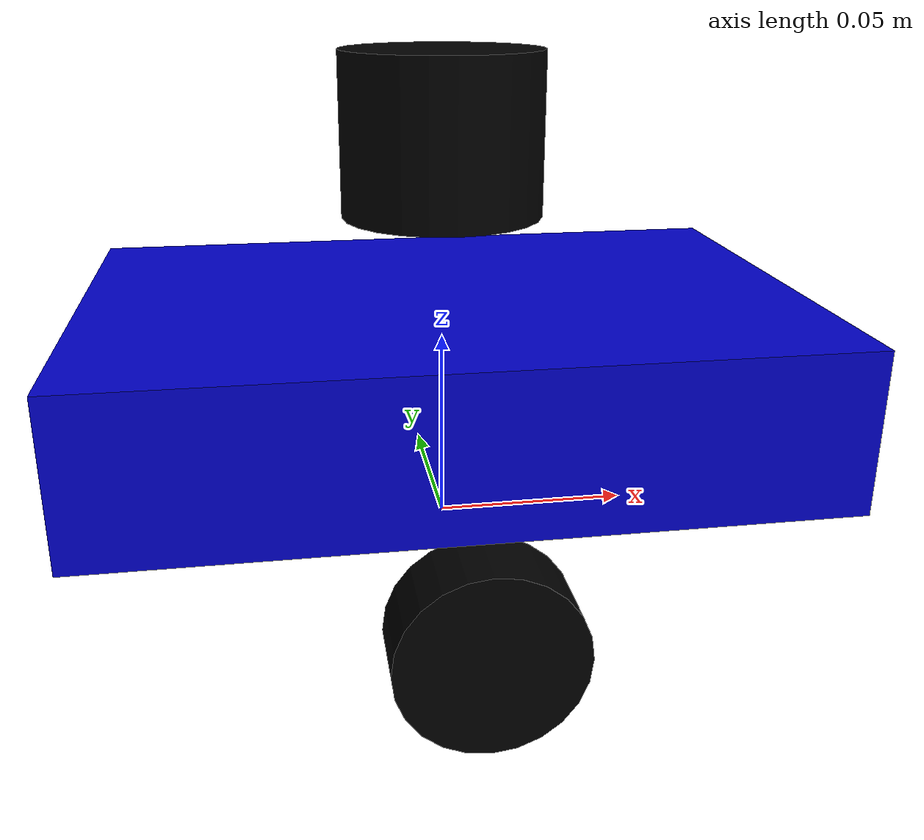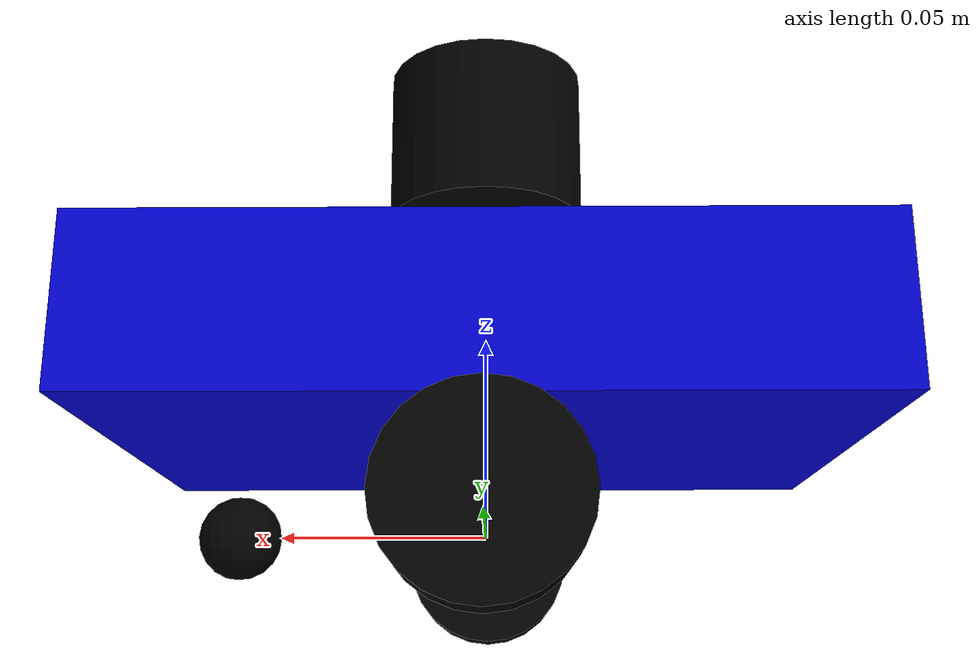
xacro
<?xml version="1.0"?>
<robot name="testbot" xmlns:xacro="http://www.ros.org/wiki/xacro">

  <xacro:include filename="$(find testbot_description)/urdf/physical_properties.xacro"/>

  <material name="black">
    <color rgba="0.0 0.0 0.0 1.0"/>
  </material>

  <material name="blue">
    <color rgba="0.0 0.0 0.8 1.0"/>
  </material>

  <link name="base_footprint"/>

  <joint name="base_joint" type="fixed">
    <parent link="base_footprint"/>
    <child link="base_link"/>
    <origin xyz="0 0 ${wheel_radius}" rpy="0 0 0"/>
  </joint>

  <link name="base_link">
    <visual>
      <geometry>
        <box size="${robot_length} ${robot_width} 0.04"/>
      </geometry>
      <material name="blue"/>
      <origin xyz="0 0 0.02" rpy="0 0 0"/>
    </visual>
    <collision>
      <geometry>
        <box size="${robot_length} ${robot_width} 0.04"/>
      </geometry>
      <origin xyz="0 0 0.02" rpy="0 0 0"/>
    </collision>
    <inertial>
      <mass value="${base_mass}"/>
      <inertia ixx="${base_inertia_x}" ixy="0.0" ixz="0.0"
               iyy="${base_inertia_y}" iyz="0.0"
               izz="${base_inertia_z}"/>
    </inertial>
  </link>

  <joint name="left_wheel_joint" type="continuous">
    <parent link="base_link"/>
    <child link="left_wheel"/>
    <origin xyz="0 ${wheel_separation/2} -${wheel_radius}" rpy="-${pi/2} 0 0"/>
    <axis xyz="0 0 1"/>
  </joint>

  <link name="left_wheel">
    <visual>
      <geometry>
        <cylinder length="${wheel_width}" radius="${wheel_radius}"/>
      </geometry>
      <material name="black"/>
    </visual>
    <collision>
      <geometry>
        <cylinder length="${wheel_width}" radius="${wheel_radius}"/>
      </geometry>
    </collision>
    <inertial>
      <mass value="${wheel_mass}"/>
      <inertia ixx="${wheel_inertia_x}" ixy="0.0" ixz="0.0"
               iyy="${wheel_inertia_y}" iyz="0.0"
               izz="${wheel_inertia_z}"/>
    </inertial>
  </link>

  <joint name="right_wheel_joint" type="continuous">
    <parent link="base_link"/>
    <child link="right_wheel"/>
    <origin xyz="0 -${wheel_separation/2} -${wheel_radius}" rpy="${pi/2} 0 0"/>
    <axis xyz="0 0 -1"/>
  </joint>

  <link name="right_wheel">
    <visual>
      <geometry>
        <cylinder length="${wheel_width}" radius="${wheel_radius}"/>
      </geometry>
      <material name="black"/>
    </visual>
    <collision>
      <geometry>
        <cylinder length="${wheel_width}" radius="${wheel_radius}"/>
      </geometry>
    </collision>
    <inertial>
      <mass value="${wheel_mass}"/>
      <inertia ixx="${wheel_inertia_x}" ixy="0.0" ixz="0.0"
               iyy="${wheel_inertia_y}" iyz="0.0"
               izz="${wheel_inertia_z}"/>
    </inertial>
  </link>

  <joint name="caster_joint" type="fixed">
    <parent link="base_link"/>
    <child link="caster"/>
    <origin xyz="${robot_length/3} 0 -${wheel_radius}" rpy="0 0 0"/>
  </joint>

  <link name="caster">
    <visual>
      <geometry>
        <sphere radius="0.01"/>
      </geometry>
      <material name="black"/>
    </visual>
    <collision>
      <geometry>
        <sphere radius="0.01"/>
      </geometry>
    </collision>
    <inertial>
      <mass value="${caster_mass}"/>
      <inertia ixx="${caster_inertia}" ixy="0.0" ixz="0.0"
               iyy="${caster_inertia}" iyz="0.0"
               izz="${caster_inertia}"/>
    </inertial>
  </link>

  <joint name="laser_joint" type="fixed">
    <parent link="base_link"/>
    <child link="laser"/>
    <origin xyz="0.0 0.0 0.08" rpy="0 0 0"/>  <!-- Adjust XYZ based on actual position -->
  </joint>

  <!-- RPLidar link -->
  <link name="laser">
    <visual>
      <geometry>
        <cylinder length="0.04" radius="0.025"/>
      </geometry>
      <material name="black"/>
    </visual>
    <collision>
      <geometry>
        <cylinder length="0.04" radius="0.025"/>
      </geometry>
    </collision>
    <inertial>
      <mass value="0.1"/>
      <inertia ixx="0.001" ixy="0.0" ixz="0.0"
               iyy="0.001" iyz="0.0"
               izz="0.001"/>
    </inertial>
  </link>

</robot>

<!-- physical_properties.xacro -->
<robot xmlns:xacro="http://www.ros.org/wiki/xacro">
    <!-- Robot Dimensions -->
    <xacro:property name="robot_length" value="0.18"/>      <!-- 18 cm -->
    <xacro:property name="robot_width" value="0.12"/>       <!-- 12 cm -->
    <xacro:property name="wheel_separation" value="0.13"/>  <!-- 13 cm -->
    <xacro:property name="wheel_radius" value="0.022"/>     <!-- 44mm diameter -->
    <xacro:property name="wheel_width" value="0.018"/>      <!-- 18mm -->

    <!-- Masses -->
    <xacro:property name="base_mass" value="1.0"/>
    <xacro:property name="wheel_mass" value="0.1"/>
    <xacro:property name="caster_mass" value="0.05"/>

    <!-- Inertia Properties -->
    <xacro:property name="base_inertia_x" value="0.01"/>
    <xacro:property name="base_inertia_y" value="0.01"/>
    <xacro:property name="base_inertia_z" value="0.01"/>

    <xacro:property name="wheel_inertia_x" value="0.001"/>
    <xacro:property name="wheel_inertia_y" value="0.001"/>
    <xacro:property name="wheel_inertia_z" value="0.001"/>

    <xacro:property name="caster_inertia" value="0.001"/>
</robot>
